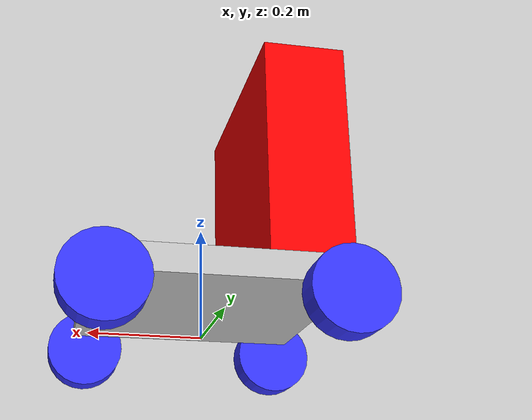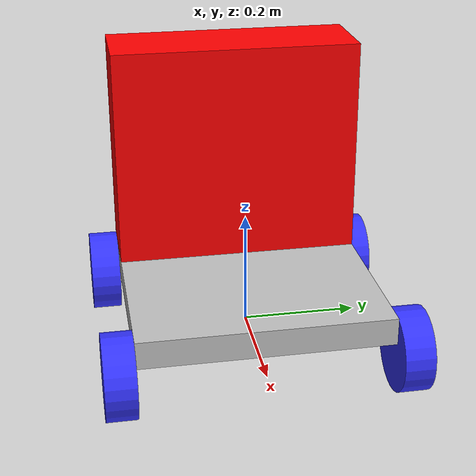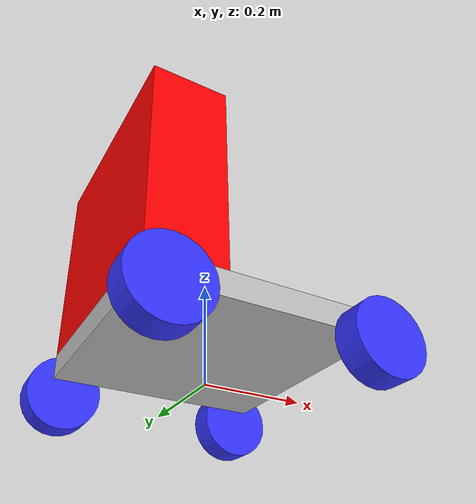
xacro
<?xml version="1.0"?>
<robot xmlns:xacro="http://ros.org/wiki/xacro" name="four_wheel_drive_robot">

  <xacro:include filename="robot_dimensions.xacro"/>
  <xacro:include filename="inertial_macros.xacro"/>
  <!-- Colors -->
  <xacro:property name="color_chassis" value="0.6 0.6 0.6 1.0"/> <!-- metallic gray -->
  <xacro:property name="color_wheel" value="0.05 0.05 0.05 1.0"/> <!-- black -->

  <material name="white">
      <color rgba="1 1 1 1" />
  </material>

  <material name="gray">
      <color rgba="0.75 0.75 0.75 1" />
  </material>

  <material name="orange">
      <color rgba="1 0.3 0.1 1"/>
  </material>

  <material name="blue">
      <color rgba="0.2 0.2 1 1"/>
  </material>

  <material name="black">
      <color rgba="0 0 0 1"/>
  </material>

  <material name="red">
      <color rgba="1 0 0 1"/>
  </material>

  <xacro:macro name="set_gazebo_color" params="link_name color_name">
    <gazebo reference="${link_name}">
      <material>Gazebo/${color_name}</material>
    </gazebo>
  </xacro:macro>

  <!-- Macros                -->

  <!-- Shelf Macro -->
  <xacro:macro name="shelf_link" params="name width depth height mass">
    <link name="${name}">
        <xacro:inertial_box mass="${mass}" x="${depth}" y="${width}" z="${height}">
          <origin xyz="${depth/2} 0 ${height/2}" rpy="0 0 0"/>
        </xacro:inertial_box>
      <visual>
        <origin xyz="${depth/2} 0 ${height/2}" rpy="0 0 0"/>
        <geometry>
          <box size="${depth} ${width} ${height}"/>
        </geometry>
        <material name="red"/>
      </visual>
      <collision>
        <origin xyz="${depth/2} 0 ${height/2}" rpy="0 0 0"/>
        <geometry>
          <box size="${depth} ${width} ${height}"/>
        </geometry>
      </collision>
    </link>
  </xacro:macro>

  <!-- Wheel Macro -->
  <xacro:macro name="wheel_link" params="name">
    <link name="${name}">
        <xacro:inertial_cylinder mass="${wheel_mass}" length="${wheel_width}" radius="${wheel_radius}">
          <origin xyz="0 0 0" rpy="0 0 0"/>
        </xacro:inertial_cylinder>
      <visual>
        <geometry>
          <cylinder length="${wheel_width}" radius="${wheel_radius}"/>
        </geometry>
        <material name="blue"/>
      </visual>
      <collision>
        <geometry>
          <cylinder length="${wheel_width}" radius="${wheel_radius}"/>
        </geometry>
      </collision>
    </link>
  </xacro:macro>

  <!-- BASE LINK -->

  <link name="base_link">

  </link>

    <!-- BASE_FOOTPRINT LINK -->

  <joint name="base_footprint_joint" type="fixed">
    <parent link="base_link"/>
    <child link="base_footprint"/>
    <origin xyz="0 0 0" rpy="0 0 0"/>
  </joint>

  <link name="base_footprint">
  </link>

  <!-- Robot Structure       -->

  <!-- Chassis -->

  <joint name="chassis_joint" type="fixed">
    <parent link="base_link"/>
    <child link="chassis"/>
    <origin xyz="0 0 ${wheel_radius-chassis_wheel_offset_z}"/>
  </joint>

  <link name="chassis">
    <visual>
      <origin xyz="0 0 ${chassis_height/2}" rpy="0 0 0"/>
      <geometry>
          <box size="${chassis_length} ${chassis_width} ${chassis_height}"/>
      </geometry>
      <material name="gray"/>
    </visual>
    <collision>
      <origin xyz="0 0 ${chassis_height/2}" rpy="0 0 0"/>
      <geometry>
        <box size="${chassis_length} ${chassis_width} ${chassis_height}"/>
      </geometry>
    </collision>
    <xacro:inertial_box mass="${chassis_mass}" x="${chassis_length}" y="${chassis_width}" z="${chassis_height}">
      <origin xyz="0 0 ${chassis_height/2}" rpy="0 0 0"/>
    </xacro:inertial_box>
  </link>

  <gazebo reference="chassis">
    <material>
      <ambient>0.75 0.75 0.75 1</ambient>   <!-- Light gray / silver -->
      <diffuse>0.75 0.75 0.75 1</diffuse>
      <specular>0.9 0.9 0.9 1</specular>
      <emissive>0 0 0 1</emissive>
    </material>
  </gazebo>

   <!-- Wheels -->
  <xacro:wheel_link name="left_front_wheel"/>
  <xacro:wheel_link name="left_rear_wheel"/>
  <xacro:wheel_link name="right_front_wheel"/>
  <xacro:wheel_link name="right_rear_wheel"/>

  <xacro:set_gazebo_color link_name="left_front_wheel" color_name="Blue"/>
  <xacro:set_gazebo_color link_name="left_rear_wheel" color_name="Red"/>
  <xacro:set_gazebo_color link_name="right_front_wheel" color_name="Blue"/>
  <xacro:set_gazebo_color link_name="right_rear_wheel" color_name="Red"/>

  <!-- Shelves -->
  <xacro:shelf_link name="shelf1"
                    width="${shelf1_width}"
                    depth="${shelf1_depth}"
                    height="${shelf1_height}"
                    mass="${shelf_mass}"/>

  <!-- Joints                -->

  <!-- Shelves fixed to chassis -->
  <joint name="shelf1_joint" type="fixed">
    <parent link="chassis"/>
    <child link="shelf1"/>
    <origin xyz="-${chassis_length/2} 0 ${chassis_height}"/>
  </joint>
  <xacro:set_gazebo_color link_name="shelf1" color_name="Red"/>

  <!-- Wheels revolute joints -->
  <joint name="left_front_wheel_joint" type="continuous">
    <parent link="base_link"/>
    <child link="left_front_wheel"/>
    <origin xyz="${wheel_x_offset} ${wheel_y_offset} ${wheel_z_offset}" rpy="-${pi/2} 0 0"/>
    <axis xyz="0 0 1"/>
  </joint>
  <joint name="left_rear_wheel_joint" type="continuous">
    <parent link="base_link"/>
    <child link="left_rear_wheel"/>
    <origin xyz="${-wheel_x_offset} ${wheel_y_offset} ${wheel_z_offset}" rpy="-${pi/2} 0 0"/>
    <axis xyz="0 0 1"/>
  </joint>
  <joint name="right_front_wheel_joint" type="continuous">
    <parent link="base_link"/>
    <child link="right_front_wheel"/>
    <origin xyz="${wheel_x_offset} ${-wheel_y_offset} ${wheel_z_offset}" rpy="${pi/2} 0 0"/>
    <axis xyz="0 0 -1"/>
  </joint>
  <joint name="right_rear_wheel_joint" type="continuous">
    <parent link="base_link"/>
    <child link="right_rear_wheel"/>
    <origin xyz="${-wheel_x_offset} ${-wheel_y_offset} ${wheel_z_offset}" rpy="${pi/2} 0 0"/>
    <axis xyz="0 0 -1"/>
  </joint>

</robot>

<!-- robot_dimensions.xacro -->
<robot xmlns:xacro="http://ros.org/wiki/xacro">

  <!-- Chassis -->
  <xacro:property name="chassis_length" value="0.432"/>
  <xacro:property name="chassis_width" value="0.432"/>
  <xacro:property name="chassis_height" value="0.048"/>
  <xacro:property name="chassis_wheel_offset_z" value="0.024"/>
  <xacro:property name="chassis_wheel_offset_x" value="0.024"/>
  <xacro:property name="chassis_mass" value="6.0"/>

  <!-- Shelf 1 -->
  <xacro:property name="shelf1_height" value="0.384"/>
  <xacro:property name="shelf1_depth" value="0.144"/>
  <xacro:property name="shelf1_width" value="${chassis_width}"/>
  <xacro:property name="shelf1_z" value="${chassis_height + 0.05}"/>
  <xacro:property name="shelf1_y" value="${-chassis_length/2 + shelf1_depth/2}"/>

  <!-- Shelf 2 -->
  <xacro:property name="shelf2_height" value="0.05"/>
  <xacro:property name="shelf2_depth" value="0.18"/>
  <xacro:property name="shelf2_width" value="${chassis_width}"/>
  <xacro:property name="shelf2_z" value="${chassis_height + 0.15}"/>
  <xacro:property name="shelf2_y" value="${-chassis_length/2 + shelf2_depth/2}"/>

  <!-- Shelf Mass -->
  <xacro:property name="shelf_mass" value="1.0"/>

  <!-- Wheel -->
  <xacro:property name="wheel_radius" value="0.072"/>
  <xacro:property name="wheel_width" value="0.052"/>
  <xacro:property name="wheel_mass" value="0.5"/>

  <!-- Wheel Offsets -->
  <xacro:property name="wheel_x_offset" value="${chassis_length/2 - chassis_wheel_offset_x}"/>
  <xacro:property name="wheel_y_offset" value="${chassis_width/2 + wheel_width/2}"/>
  <xacro:property name="wheel_z_offset" value="${chassis_wheel_offset_z}"/>

</robot>
